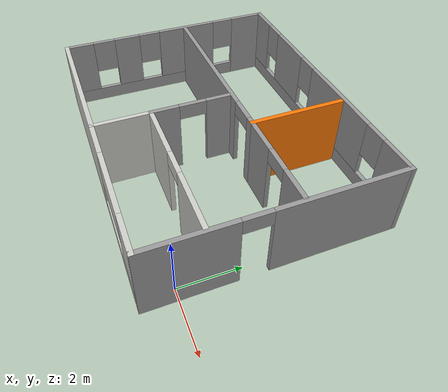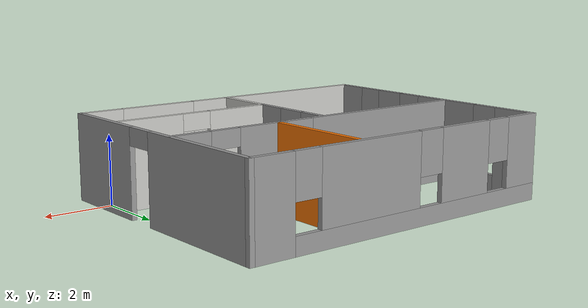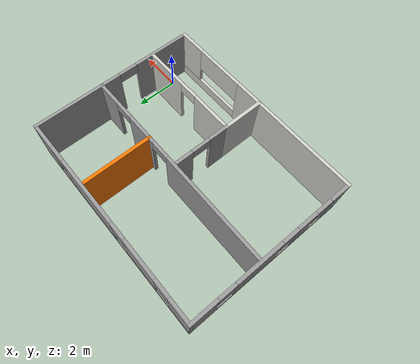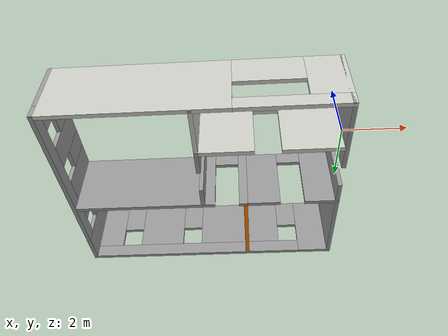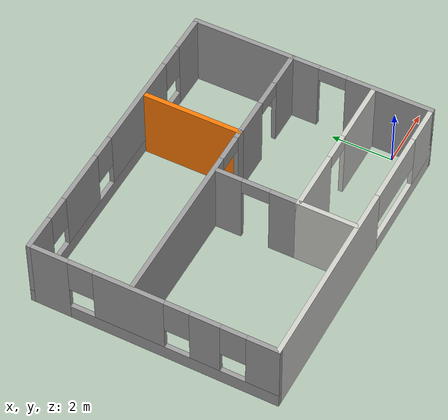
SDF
<?xml version='1.0'?>
<sdf version='1.6'>
  <model name='Hause'>
    <pose frame=''>-4.63588 2.90586 0 0 -0 0</pose>
    <link name='Wall_11'>
      <pose frame=''>-1.61949 0.663584 0 0 -0 3.14159</pose>
      <visual name='Wall_11_Visual_0'>
        <pose frame=''>-3.08857 0 1.25 0 -0 0</pose>
        <geometry>
          <box>
            <size>0.322856 0.15 2.5</size>
          </box>
        </geometry>
        <material>
          <script>
            <uri>file://media/materials/scripts/gazebo.material</uri>
            <name>Gazebo/Grey</name>
          </script>
          <ambient>1 1 1 1</ambient>
        </material>
        <meta>
          <layer>0</layer>
        </meta>
      </visual>
      <collision name='Wall_11_Collision_0'>
        <geometry>
          <box>
            <size>0.322856 0.15 2.5</size>
          </box>
        </geometry>
        <pose frame=''>-3.08857 0 1.25 0 -0 0</pose>
      </collision>
      <visual name='Wall_11_Visual_1'>
        <pose frame=''>0.611428 0 1.25 0 -0 0</pose>
        <geometry>
          <box>
            <size>5.27714 0.15 2.5</size>
          </box>
        </geometry>
        <material>
          <script>
            <uri>file://media/materials/scripts/gazebo.material</uri>
            <name>Gazebo/Grey</name>
          </script>
          <ambient>1 1 1 1</ambient>
        </material>
        <meta>
          <layer>0</layer>
        </meta>
      </visual>
      <collision name='Wall_11_Collision_1'>
        <geometry>
          <box>
            <size>5.27714 0.15 2.5</size>
          </box>
        </geometry>
        <pose frame=''>0.611428 0 1.25 0 -0 0</pose>
      </collision>
      <visual name='Wall_11_Visual_2'>
        <pose frame=''>-2.47714 0 2.25 0 -0 0</pose>
        <geometry>
          <box>
            <size>0.9 0.15 0.5</size>
          </box>
        </geometry>
        <material>
          <script>
            <uri>file://media/materials/scripts/gazebo.material</uri>
            <name>Gazebo/Grey</name>
          </script>
          <ambient>1 1 1 1</ambient>
        </material>
        <meta>
          <layer>0</layer>
        </meta>
      </visual>
      <collision name='Wall_11_Collision_2'>
        <geometry>
          <box>
            <size>0.9 0.15 0.5</size>
          </box>
        </geometry>
        <pose frame=''>-2.47714 0 2.25 0 -0 0</pose>
      </collision>
    </link>
    <link name='Wall_13'>
      <pose frame=''>2.38799 -2.06583 0 0 -0 3.14159</pose>
      <visual name='Wall_13_Visual_0'>
        <pose frame=''>-1.46158 0 1.25 0 -0 0</pose>
        <geometry>
          <box>
            <size>2.07685 0.15 2.5</size>
          </box>
        </geometry>
        <material>
          <script>
            <uri>file://media/materials/scripts/gazebo.material</uri>
            <name>Gazebo/CeilingTiled</name>
          </script>
          <ambient>1 1 1 1</ambient>
        </material>
        <meta>
          <layer>0</layer>
        </meta>
      </visual>
      <collision name='Wall_13_Collision_0'>
        <geometry>
          <box>
            <size>2.07685 0.15 2.5</size>
          </box>
        </geometry>
        <pose frame=''>-1.46158 0 1.25 0 -0 0</pose>
      </collision>
      <visual name='Wall_13_Visual_1'>
        <pose frame=''>1.48842 0 1.25 0 -0 0</pose>
        <geometry>
          <box>
            <size>2.02316 0.15 2.5</size>
          </box>
        </geometry>
        <material>
          <script>
            <uri>file://media/materials/scripts/gazebo.material</uri>
            <name>Gazebo/CeilingTiled</name>
          </script>
          <ambient>1 1 1 1</ambient>
        </material>
        <meta>
          <layer>0</layer>
        </meta>
      </visual>
      <collision name='Wall_13_Collision_1'>
        <geometry>
          <box>
            <size>2.02316 0.15 2.5</size>
          </box>
        </geometry>
        <pose frame=''>1.48842 0 1.25 0 -0 0</pose>
      </collision>
      <visual name='Wall_13_Visual_2'>
        <pose frame=''>0.026845 0 2.25 0 -0 0</pose>
        <geometry>
          <box>
            <size>0.9 0.15 0.5</size>
          </box>
        </geometry>
        <material>
          <script>
            <uri>file://media/materials/scripts/gazebo.material</uri>
            <name>Gazebo/CeilingTiled</name>
          </script>
          <ambient>1 1 1 1</ambient>
        </material>
        <meta>
          <layer>0</layer>
        </meta>
      </visual>
      <collision name='Wall_13_Collision_2'>
        <geometry>
          <box>
            <size>0.9 0.15 0.5</size>
          </box>
        </geometry>
        <pose frame=''>0.026845 0 2.25 0 -0 0</pose>
      </collision>
    </link>
    <link name='Wall_14'>
      <collision name='Wall_14_Collision'>
        <geometry>
          <box>
            <size>2 0.15 2.5</size>
          </box>
        </geometry>
        <pose frame=''>0 0 1.25 0 -0 0</pose>
      </collision>
      <visual name='Wall_14_Visual'>
        <pose frame=''>0 0 1.25 0 -0 0</pose>
        <geometry>
          <box>
            <size>2 0.15 2.5</size>
          </box>
        </geometry>
        <material>
          <script>
            <uri>file://media/materials/scripts/gazebo.material</uri>
            <name>Gazebo/CeilingTiled</name>
          </script>
          <ambient>1 1 1 1</ambient>
        </material>
        <meta>
          <layer>0</layer>
        </meta>
      </visual>
      <pose frame=''>-0.037014 -2.99083 0 0 0 -1.5708</pose>
    </link>
    <link name='Wall_16'>
      <pose frame=''>-0.037014 -0.765827 0 0 -0 1.5708</pose>
      <visual name='Wall_16_Visual_0'>
        <pose frame=''>-0.880147 0 1.25 0 -0 0</pose>
        <geometry>
          <box>
            <size>0.989706 0.15 2.5</size>
          </box>
        </geometry>
        <material>
          <script>
            <uri>file://media/materials/scripts/gazebo.material</uri>
            <name>Gazebo/Grey</name>
          </script>
          <ambient>1 1 1 1</ambient>
        </material>
        <meta>
          <layer>0</layer>
        </meta>
      </visual>
      <collision name='Wall_16_Collision_0'>
        <geometry>
          <box>
            <size>0.989706 0.15 2.5</size>
          </box>
        </geometry>
        <pose frame=''>-0.880147 0 1.25 0 -0 0</pose>
      </collision>
      <visual name='Wall_16_Visual_1'>
        <pose frame=''>0.944853 0 1.25 0 -0 0</pose>
        <geometry>
          <box>
            <size>0.860294 0.15 2.5</size>
          </box>
        </geometry>
        <material>
          <script>
            <uri>file://media/materials/scripts/gazebo.material</uri>
            <name>Gazebo/Grey</name>
          </script>
          <ambient>1 1 1 1</ambient>
        </material>
        <meta>
          <layer>0</layer>
        </meta>
      </visual>
      <collision name='Wall_16_Collision_1'>
        <geometry>
          <box>
            <size>0.860294 0.15 2.5</size>
          </box>
        </geometry>
        <pose frame=''>0.944853 0 1.25 0 -0 0</pose>
      </collision>
      <visual name='Wall_16_Visual_2'>
        <pose frame=''>0.064706 0 2.25 0 -0 0</pose>
        <geometry>
          <box>
            <size>0.9 0.15 0.5</size>
          </box>
        </geometry>
        <material>
          <script>
            <uri>file://media/materials/scripts/gazebo.material</uri>
            <name>Gazebo/Grey</name>
          </script>
          <ambient>1 1 1 1</ambient>
        </material>
        <meta>
          <layer>0</layer>
        </meta>
      </visual>
      <collision name='Wall_16_Collision_2'>
        <geometry>
          <box>
            <size>0.9 0.15 0.5</size>
          </box>
        </geometry>
        <pose frame=''>0.064706 0 2.25 0 -0 0</pose>
      </collision>
    </link>
    <link name='Wall_3'>
      <pose frame=''>-4.925 0 0 0 0 -1.5708</pose>
      <visual name='Wall_3_Visual_0'>
        <pose frame=''>-3.3298 0 1.25 0 -0 0</pose>
        <geometry>
          <box>
            <size>1.3404 0.15 2.5</size>
          </box>
        </geometry>
        <material>
          <script>
            <uri>file://media/materials/scripts/gazebo.material</uri>
            <name>Gazebo/Grey</name>
          </script>
          <ambient>1 1 1 1</ambient>
        </material>
        <meta>
          <layer>0</layer>
        </meta>
      </visual>
      <collision name='Wall_3_Collision_0'>
        <geometry>
          <box>
            <size>1.3404 0.15 2.5</size>
          </box>
        </geometry>
        <pose frame=''>-3.3298 0 1.25 0 -0 0</pose>
      </collision>
      <visual name='Wall_3_Visual_1'>
        <pose frame=''>0.670202 0 0.25 0 -0 0</pose>
        <geometry>
          <box>
            <size>6.6596 0.15 0.5</size>
          </box>
        </geometry>
        <material>
          <script>
            <uri>file://media/materials/scripts/gazebo.material</uri>
            <name>Gazebo/Grey</name>
          </script>
          <ambient>1 1 1 1</ambient>
        </material>
        <meta>
          <layer>0</layer>
        </meta>
      </visual>
      <collision name='Wall_3_Collision_1'>
        <geometry>
          <box>
            <size>6.6596 0.15 0.5</size>
          </box>
        </geometry>
        <pose frame=''>0.670202 0 0.25 0 -0 0</pose>
      </collision>
      <visual name='Wall_3_Visual_2'>
        <pose frame=''>-0.732976 0 1.5 0 -0 0</pose>
        <geometry>
          <box>
            <size>2.25324 0.15 2</size>
          </box>
        </geometry>
        <material>
          <script>
            <uri>file://media/materials/scripts/gazebo.material</uri>
            <name>Gazebo/Grey</name>
          </script>
          <ambient>1 1 1 1</ambient>
        </material>
        <meta>
          <layer>0</layer>
        </meta>
      </visual>
      <collision name='Wall_3_Collision_2'>
        <geometry>
          <box>
            <size>2.25324 0.15 2</size>
          </box>
        </geometry>
        <pose frame=''>-0.732976 0 1.5 0 -0 0</pose>
      </collision>
      <visual name='Wall_3_Visual_3'>
        <pose frame=''>1.67261 0 1.5 0 -0 0</pose>
        <geometry>
          <box>
            <size>0.957926 0.15 2</size>
          </box>
        </geometry>
        <material>
          <script>
            <uri>file://media/materials/scripts/gazebo.material</uri>
            <name>Gazebo/Grey</name>
          </script>
          <ambient>1 1 1 1</ambient>
        </material>
        <meta>
          <layer>0</layer>
        </meta>
      </visual>
      <collision name='Wall_3_Collision_3'>
        <geometry>
          <box>
            <size>0.957926 0.15 2</size>
          </box>
        </geometry>
        <pose frame=''>1.67261 0 1.5 0 -0 0</pose>
      </collision>
      <visual name='Wall_3_Visual_4'>
        <pose frame=''>3.47579 0 1.5 0 -0 0</pose>
        <geometry>
          <box>
            <size>1.04843 0.15 2</size>
          </box>
        </geometry>
        <material>
          <script>
            <uri>file://media/materials/scripts/gazebo.material</uri>
            <name>Gazebo/Grey</name>
          </script>
          <ambient>1 1 1 1</ambient>
        </material>
        <meta>
          <layer>0</layer>
        </meta>
      </visual>
      <collision name='Wall_3_Collision_4'>
        <geometry>
          <box>
            <size>1.04843 0.15 2</size>
          </box>
        </geometry>
        <pose frame=''>3.47579 0 1.5 0 -0 0</pose>
      </collision>
      <visual name='Wall_3_Visual_5'>
        <pose frame=''>-2.2596 0 1.9 0 -0 0</pose>
        <geometry>
          <box>
            <size>0.8 0.15 1.2</size>
          </box>
        </geometry>
        <material>
          <script>
            <uri>file://media/materials/scripts/gazebo.material</uri>
            <name>Gazebo/Grey</name>
          </script>
          <ambient>1 1 1 1</ambient>
        </material>
        <meta>
          <layer>0</layer>
        </meta>
      </visual>
      <collision name='Wall_3_Collision_5'>
        <geometry>
          <box>
            <size>0.8 0.15 1.2</size>
          </box>
        </geometry>
        <pose frame=''>-2.2596 0 1.9 0 -0 0</pose>
      </collision>
      <visual name='Wall_3_Visual_6'>
        <pose frame=''>0.793644 0 1.9 0 -0 0</pose>
        <geometry>
          <box>
            <size>0.8 0.15 1.2</size>
          </box>
        </geometry>
        <material>
          <script>
            <uri>file://media/materials/scripts/gazebo.material</uri>
            <name>Gazebo/Grey</name>
          </script>
          <ambient>1 1 1 1</ambient>
        </material>
        <meta>
          <layer>0</layer>
        </meta>
      </visual>
      <collision name='Wall_3_Collision_6'>
        <geometry>
          <box>
            <size>0.8 0.15 1.2</size>
          </box>
        </geometry>
        <pose frame=''>0.793644 0 1.9 0 -0 0</pose>
      </collision>
      <visual name='Wall_3_Visual_7'>
        <pose frame=''>2.55157 0 1.9 0 -0 0</pose>
        <geometry>
          <box>
            <size>0.8 0.15 1.2</size>
          </box>
        </geometry>
        <material>
          <script>
            <uri>file://media/materials/scripts/gazebo.material</uri>
            <name>Gazebo/Grey</name>
          </script>
          <ambient>1 1 1 1</ambient>
        </material>
        <meta>
          <layer>0</layer>
        </meta>
      </visual>
      <collision name='Wall_3_Collision_7'>
        <geometry>
          <box>
            <size>0.8 0.15 1.2</size>
          </box>
        </geometry>
        <pose frame=''>2.55157 0 1.9 0 -0 0</pose>
      </collision>
    </link>
    <link name='Wall_4'>
      <pose frame=''>1e-06 -3.925 0 0 -0 0</pose>
      <visual name='Wall_4_Visual_0'>
        <pose frame=''>-1.87795 0 1.25 0 -0 0</pose>
        <geometry>
          <box>
            <size>6.24409 0.15 2.5</size>
          </box>
        </geometry>
        <material>
          <script>
            <uri>file://media/materials/scripts/gazebo.material</uri>
            <name>Gazebo/CeilingTiled</name>
          </script>
          <ambient>1 1 1 1</ambient>
        </material>
        <meta>
          <layer>0</layer>
        </meta>
      </visual>
      <collision name='Wall_4_Collision_0'>
        <geometry>
          <box>
            <size>6.24409 0.15 2.5</size>
          </box>
        </geometry>
        <pose frame=''>-1.87795 0 1.25 0 -0 0</pose>
      </collision>
      <visual name='Wall_4_Visual_1'>
        <pose frame=''>3.12205 0 0.25 0 -0 0</pose>
        <geometry>
          <box>
            <size>3.75591 0.15 0.5</size>
          </box>
        </geometry>
        <material>
          <script>
            <uri>file://media/materials/scripts/gazebo.material</uri>
            <name>Gazebo/CeilingTiled</name>
          </script>
          <ambient>1 1 1 1</ambient>
        </material>
        <meta>
          <layer>0</layer>
        </meta>
      </visual>
      <collision name='Wall_4_Collision_1'>
        <geometry>
          <box>
            <size>3.75591 0.15 0.5</size>
          </box>
        </geometry>
        <pose frame=''>3.12205 0 0.25 0 -0 0</pose>
      </collision>
      <visual name='Wall_4_Visual_2'>
        <pose frame=''>4.32005 0 1.5 0 -0 0</pose>
        <geometry>
          <box>
            <size>1.3599 0.15 2</size>
          </box>
        </geometry>
        <material>
          <script>
            <uri>file://media/materials/scripts/gazebo.material</uri>
            <name>Gazebo/CeilingTiled</name>
          </script>
          <ambient>1 1 1 1</ambient>
        </material>
        <meta>
          <layer>0</layer>
        </meta>
      </visual>
      <collision name='Wall_4_Collision_2'>
        <geometry>
          <box>
            <size>1.3599 0.15 2</size>
          </box>
        </geometry>
        <pose frame=''>4.32005 0 1.5 0 -0 0</pose>
      </collision>
      <visual name='Wall_4_Visual_3'>
        <pose frame=''>2.4421 0 1.9 0 -0 0</pose>
        <geometry>
          <box>
            <size>2.39601 0.15 1.2</size>
          </box>
        </geometry>
        <material>
          <script>
            <uri>file://media/materials/scripts/gazebo.material</uri>
            <name>Gazebo/CeilingTiled</name>
          </script>
          <ambient>1 1 1 1</ambient>
        </material>
        <meta>
          <layer>0</layer>
        </meta>
      </visual>
      <collision name='Wall_4_Collision_3'>
        <geometry>
          <box>
            <size>2.39601 0.15 1.2</size>
          </box>
        </geometry>
        <pose frame=''>2.4421 0 1.9 0 -0 0</pose>
      </collision>
    </link>
    <link name='Wall_5'>
      <pose frame=''>4.925 0 0 0 -0 1.5708</pose>
      <visual name='Wall_5_Visual_0'>
        <pose frame=''>-2.57556 0 1.25 0 -0 0</pose>
        <geometry>
          <box>
            <size>2.84888 0.15 2.5</size>
          </box>
        </geometry>
        <material>
          <script>
            <uri>file://media/materials/scripts/gazebo.material</uri>
            <name>Gazebo/Grey</name>
          </script>
          <ambient>1 1 1 1</ambient>
        </material>
        <meta>
          <layer>0</layer>
        </meta>
      </visual>
      <collision name='Wall_5_Collision_0'>
        <geometry>
          <box>
            <size>2.84888 0.15 2.5</size>
          </box>
        </geometry>
        <pose frame=''>-2.57556 0 1.25 0 -0 0</pose>
      </collision>
      <visual name='Wall_5_Visual_1'>
        <pose frame=''>1.87444 0 1.25 0 -0 0</pose>
        <geometry>
          <box>
            <size>4.25112 0.15 2.5</size>
          </box>
        </geometry>
        <material>
          <script>
            <uri>file://media/materials/scripts/gazebo.material</uri>
            <name>Gazebo/Grey</name>
          </script>
          <ambient>1 1 1 1</ambient>
        </material>
        <meta>
          <layer>0</layer>
        </meta>
      </visual>
      <collision name='Wall_5_Collision_1'>
        <geometry>
          <box>
            <size>4.25112 0.15 2.5</size>
          </box>
        </geometry>
        <pose frame=''>1.87444 0 1.25 0 -0 0</pose>
      </collision>
      <visual name='Wall_5_Visual_2'>
        <pose frame=''>-0.701122 0 2.25 0 -0 0</pose>
        <geometry>
          <box>
            <size>0.9 0.15 0.5</size>
          </box>
        </geometry>
        <material>
          <script>
            <uri>file://media/materials/scripts/gazebo.material</uri>
            <name>Gazebo/Grey</name>
          </script>
          <ambient>1 1 1 1</ambient>
        </material>
        <meta>
          <layer>0</layer>
        </meta>
      </visual>
      <collision name='Wall_5_Collision_2'>
        <geometry>
          <box>
            <size>0.9 0.15 0.5</size>
          </box>
        </geometry>
        <pose frame=''>-0.701122 0 2.25 0 -0 0</pose>
      </collision>
    </link>
    <link name='Wall_6'>
      <pose frame=''>1e-06 3.925 0 0 -0 3.14159</pose>
      <visual name='Wall_6_Visual_0'>
        <pose frame=''>-4.34318 0 1.25 0 -0 0</pose>
        <geometry>
          <box>
            <size>1.31363 0.15 2.5</size>
          </box>
        </geometry>
        <material>
          <script>
            <uri>file://media/materials/scripts/gazebo.material</uri>
            <name>Gazebo/Grey</name>
          </script>
          <ambient>1 1 1 1</ambient>
        </material>
        <meta>
          <layer>0</layer>
        </meta>
      </visual>
      <collision name='Wall_6_Collision_0'>
        <geometry>
          <box>
            <size>1.31363 0.15 2.5</size>
          </box>
        </geometry>
        <pose frame=''>-4.34318 0 1.25 0 -0 0</pose>
      </collision>
      <visual name='Wall_6_Visual_1'>
        <pose frame=''>0.656817 0 0.25 0 -0 0</pose>
        <geometry>
          <box>
            <size>8.68637 0.15 0.5</size>
          </box>
        </geometry>
        <material>
          <script>
            <uri>file://media/materials/scripts/gazebo.material</uri>
            <name>Gazebo/Grey</name>
          </script>
          <ambient>1 1 1 1</ambient>
        </material>
        <meta>
          <layer>0</layer>
        </meta>
      </visual>
      <collision name='Wall_6_Collision_1'>
        <geometry>
          <box>
            <size>8.68637 0.15 0.5</size>
          </box>
        </geometry>
        <pose frame=''>0.656817 0 0.25 0 -0 0</pose>
      </collision>
      <visual name='Wall_6_Visual_2'>
        <pose frame=''>-1.23931 0 1.5 0 -0 0</pose>
        <geometry>
          <box>
            <size>3.29412 0.15 2</size>
          </box>
        </geometry>
        <material>
          <script>
            <uri>file://media/materials/scripts/gazebo.material</uri>
            <name>Gazebo/Grey</name>
          </script>
          <ambient>1 1 1 1</ambient>
        </material>
        <meta>
          <layer>0</layer>
        </meta>
      </visual>
      <collision name='Wall_6_Collision_2'>
        <geometry>
          <box>
            <size>3.29412 0.15 2</size>
          </box>
        </geometry>
        <pose frame=''>-1.23931 0 1.5 0 -0 0</pose>
      </collision>
      <visual name='Wall_6_Visual_3'>
        <pose frame=''>2.11463 0 1.5 0 -0 0</pose>
        <geometry>
          <box>
            <size>1.81376 0.15 2</size>
          </box>
        </geometry>
        <material>
          <script>
            <uri>file://media/materials/scripts/gazebo.material</uri>
            <name>Gazebo/Grey</name>
          </script>
          <ambient>1 1 1 1</ambient>
        </material>
        <meta>
          <layer>0</layer>
        </meta>
      </visual>
      <collision name='Wall_6_Collision_3'>
        <geometry>
          <box>
            <size>1.81376 0.15 2</size>
          </box>
        </geometry>
        <pose frame=''>2.11463 0 1.5 0 -0 0</pose>
      </collision>
      <visual name='Wall_6_Visual_4'>
        <pose frame=''>4.41076 0 1.5 0 -0 0</pose>
        <geometry>
          <box>
            <size>1.17849 0.15 2</size>
          </box>
        </geometry>
        <material>
          <script>
            <uri>file://media/materials/scripts/gazebo.material</uri>
            <name>Gazebo/Grey</name>
          </script>
          <ambient>1 1 1 1</ambient>
        </material>
        <meta>
          <layer>0</layer>
        </meta>
      </visual>
      <collision name='Wall_6_Collision_4'>
        <geometry>
          <box>
            <size>1.17849 0.15 2</size>
          </box>
        </geometry>
        <pose frame=''>4.41076 0 1.5 0 -0 0</pose>
      </collision>
      <visual name='Wall_6_Visual_5'>
        <pose frame=''>-3.28637 0 1.9 0 -0 0</pose>
        <geometry>
          <box>
            <size>0.8 0.15 1.2</size>
          </box>
        </geometry>
        <material>
          <script>
            <uri>file://media/materials/scripts/gazebo.material</uri>
            <name>Gazebo/Grey</name>
          </script>
          <ambient>1 1 1 1</ambient>
        </material>
        <meta>
          <layer>0</layer>
        </meta>
      </visual>
      <collision name='Wall_6_Collision_5'>
        <geometry>
          <box>
            <size>0.8 0.15 1.2</size>
          </box>
        </geometry>
        <pose frame=''>-3.28637 0 1.9 0 -0 0</pose>
      </collision>
      <visual name='Wall_6_Visual_6'>
        <pose frame=''>0.807752 0 1.9 0 -0 0</pose>
        <geometry>
          <box>
            <size>0.8 0.15 1.2</size>
          </box>
        </geometry>
        <material>
          <script>
            <uri>file://media/materials/scripts/gazebo.material</uri>
            <name>Gazebo/Grey</name>
          </script>
          <ambient>1 1 1 1</ambient>
        </material>
        <meta>
          <layer>0</layer>
        </meta>
      </visual>
      <collision name='Wall_6_Collision_6'>
        <geometry>
          <box>
            <size>0.8 0.15 1.2</size>
          </box>
        </geometry>
        <pose frame=''>0.807752 0 1.9 0 -0 0</pose>
      </collision>
      <visual name='Wall_6_Visual_7'>
        <pose frame=''>3.42151 0 1.9 0 -0 0</pose>
        <geometry>
          <box>
            <size>0.8 0.15 1.2</size>
          </box>
        </geometry>
        <material>
          <script>
            <uri>file://media/materials/scripts/gazebo.material</uri>
            <name>Gazebo/Grey</name>
          </script>
          <ambient>1 1 1 1</ambient>
        </material>
        <meta>
          <layer>0</layer>
        </meta>
      </visual>
      <collision name='Wall_6_Collision_7'>
        <geometry>
          <box>
            <size>0.8 0.15 1.2</size>
          </box>
        </geometry>
        <pose frame=''>3.42151 0 1.9 0 -0 0</pose>
      </collision>
    </link>
    <link name='Wall_8'>
      <pose frame=''>3.23051 0.663584 0 0 -0 3.14159</pose>
      <visual name='Wall_8_Visual_0'>
        <pose frame=''>-1.12793 0 1.25 0 -0 0</pose>
        <geometry>
          <box>
            <size>1.24414 0.15 2.5</size>
          </box>
        </geometry>
        <material>
          <script>
            <uri>file://media/materials/scripts/gazebo.material</uri>
            <name>Gazebo/Grey</name>
          </script>
          <ambient>1 1 1 1</ambient>
        </material>
        <meta>
          <layer>0</layer>
        </meta>
      </visual>
      <collision name='Wall_8_Collision_0'>
        <geometry>
          <box>
            <size>1.24414 0.15 2.5</size>
          </box>
        </geometry>
        <pose frame=''>-1.12793 0 1.25 0 -0 0</pose>
      </collision>
      <visual name='Wall_8_Visual_1'>
        <pose frame=''>1.07207 0 1.25 0 -0 0</pose>
        <geometry>
          <box>
            <size>1.35586 0.15 2.5</size>
          </box>
        </geometry>
        <material>
          <script>
            <uri>file://media/materials/scripts/gazebo.material</uri>
            <name>Gazebo/Grey</name>
          </script>
          <ambient>1 1 1 1</ambient>
        </material>
        <meta>
          <layer>0</layer>
        </meta>
      </visual>
      <collision name='Wall_8_Collision_1'>
        <geometry>
          <box>
            <size>1.35586 0.15 2.5</size>
          </box>
        </geometry>
        <pose frame=''>1.07207 0 1.25 0 -0 0</pose>
      </collision>
      <visual name='Wall_8_Visual_2'>
        <pose frame=''>-0.055858 0 2.25 0 -0 0</pose>
        <geometry>
          <box>
            <size>0.9 0.15 0.5</size>
          </box>
        </geometry>
        <material>
          <script>
            <uri>file://media/materials/scripts/gazebo.material</uri>
            <name>Gazebo/Grey</name>
          </script>
          <ambient>1 1 1 1</ambient>
        </material>
        <meta>
          <layer>0</layer>
        </meta>
      </visual>
      <collision name='Wall_8_Collision_2'>
        <geometry>
          <box>
            <size>0.9 0.15 0.5</size>
          </box>
        </geometry>
        <pose frame=''>-0.055858 0 2.25 0 -0 0</pose>
      </collision>
    </link>
    <link name='Wall_9'>
      <collision name='Wall_9_Collision'>
        <geometry>
          <box>
            <size>3.25 0.15 2.5</size>
          </box>
        </geometry>
        <pose frame=''>0 0 1.25 0 -0 0</pose>
      </collision>
      <visual name='Wall_9_Visual'>
        <pose frame=''>0 0 1.25 0 -0 0</pose>
        <geometry>
          <box>
            <size>3.25 0.15 2.5</size>
          </box>
        </geometry>
        <material>
          <script>
            <uri>file://media/materials/scripts/gazebo.material</uri>
            <name>Gazebo/Grey</name>
          </script>
          <ambient>0.996078 0.47451 0.0196078 1</ambient>
        </material>
        <meta>
          <layer>0</layer>
        </meta>
      </visual>
      <pose frame=''>1.55551 2.21358 0 0 -0 1.5708</pose>
    </link>
    <static>1</static>
  </model>
</sdf>
